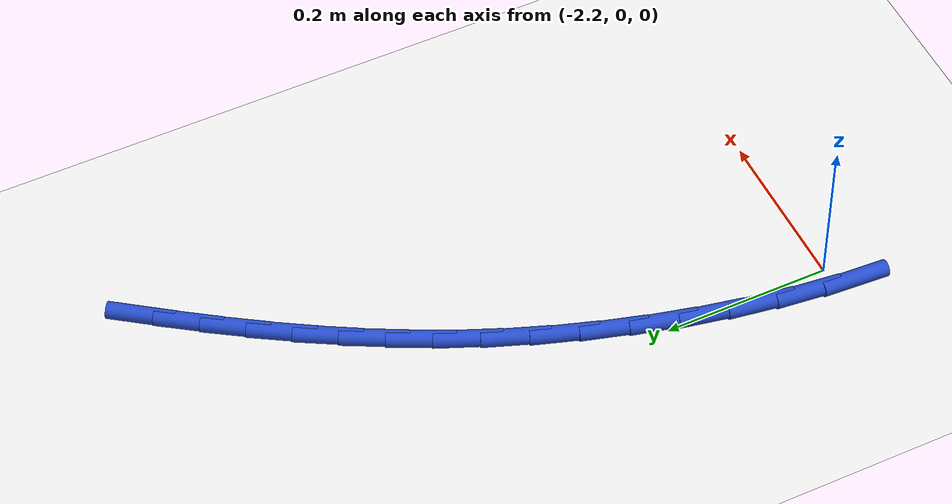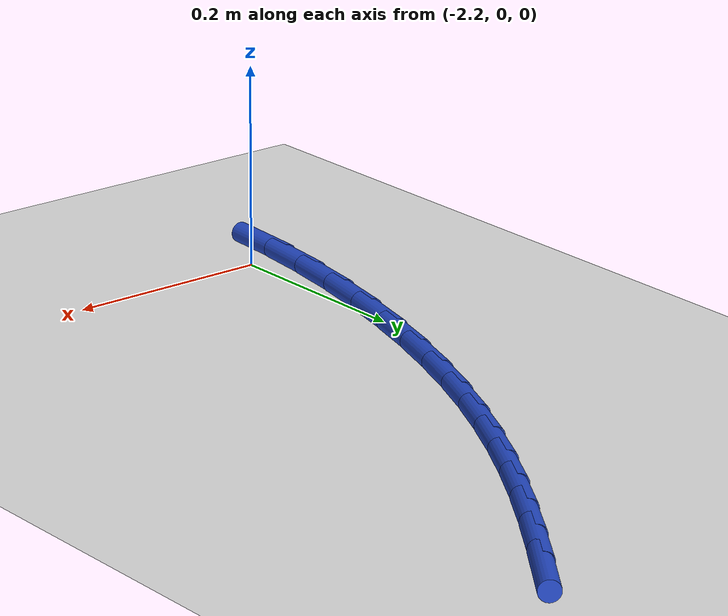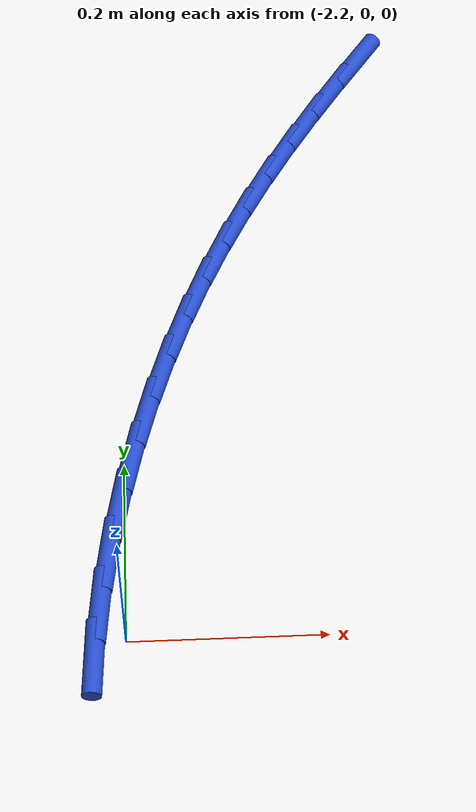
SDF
<sdf version="1.6">
 <world name="default">
  <model name="ground_plane">
   <static>1</static>
   <link name="link">
    <collision name="collision">
     <geometry><plane><normal>0 0 1</normal><size>100 100</size></plane></geometry>
     <surface><friction><ode><mu>100</mu><mu2>50</mu2></ode></friction></surface>
    </collision>
    <visual name="visual">
     <cast_shadows>0</cast_shadows>
     <geometry><plane><normal>0 0 1</normal><size>100 100</size></plane></geometry>
     <material>
      <script><uri>file://media/materials/scripts/gazebo.material</uri><name>Gazebo/WhiteGlow</name></script>
     </material>
    </visual>
   </link>
  </model>
  <model name="line">
   <link name="link_50">
    <pose>-1.9269551712462487 0.7245511019169529 0.01 0 1.57 0.9455385366118471</pose>
    <collision name="collision">
     <geometry><cylinder><radius>0.01</radius><length>0.08</length></cylinder></geometry>
    </collision>
    <visual name="visual">
     <material>
      <script><name>Gazebo/Blue</name><uri>file://media/materials/scripts/gazebo.material</uri></script>
     </material>
     <geometry><cylinder><radius>0.01</radius><length>0.08</length></cylinder></geometry>
    </visual>
   </link>
   <link name="link_51">
    <pose>-1.9588993289671053 0.6802995464505053 0.01 0 1.57 0.9654908058356094</pose>
    <collision name="collision">
     <geometry><cylinder><radius>0.01</radius><length>0.08</length></cylinder></geometry>
    </collision>
    <visual name="visual">
     <material>
      <script><name>Gazebo/Blue</name><uri>file://media/materials/scripts/gazebo.material</uri></script>
     </material>
     <geometry><cylinder><radius>0.01</radius><length>0.08</length></cylinder></geometry>
    </visual>
   </link>
   <link name="link_52">
    <pose>-1.9892897218405206 0.6363798735641859 0.01 0 1.57 0.9898638619060566</pose>
    <collision name="collision">
     <geometry><cylinder><radius>0.01</radius><length>0.08</length></cylinder></geometry>
    </collision>
    <visual name="visual">
     <material>
      <script><name>Gazebo/Blue</name><uri>file://media/materials/scripts/gazebo.material</uri></script>
     </material>
     <geometry><cylinder><radius>0.01</radius><length>0.08</length></cylinder></geometry>
    </visual>
   </link>
   <link name="link_53">
    <pose>-2.0181248855095126 0.5924574417722727 0.01 0 1.57 1.0186046567034703</pose>
    <collision name="collision">
     <geometry><cylinder><radius>0.01</radius><length>0.08</length></cylinder></geometry>
    </collision>
    <visual name="visual">
     <material>
      <script><name>Gazebo/Blue</name><uri>file://media/materials/scripts/gazebo.material</uri></script>
     </material>
     <geometry><cylinder><radius>0.01</radius><length>0.08</length></cylinder></geometry>
    </visual>
   </link>
   <link name="link_54">
    <pose>-2.0454036297812106 0.5481827352357239 0.01 0 1.57 1.0513103813742697</pose>
    <collision name="collision">
     <geometry><cylinder><radius>0.01</radius><length>0.08</length></cylinder></geometry>
    </collision>
    <visual name="visual">
     <material>
      <script><name>Gazebo/Blue</name><uri>file://media/materials/scripts/gazebo.material</uri></script>
     </material>
     <geometry><cylinder><radius>0.01</radius><length>0.08</length></cylinder></geometry>
    </visual>
   </link>
   <link name="link_55">
    <pose>-2.071124764462743 0.5032062381154974 0.01 0 1.57 1.0873878509446575</pose>
    <collision name="collision">
     <geometry><cylinder><radius>0.01</radius><length>0.08</length></cylinder></geometry>
    </collision>
    <visual name="visual">
     <material>
      <script><name>Gazebo/Blue</name><uri>file://media/materials/scripts/gazebo.material</uri></script>
     </material>
     <geometry><cylinder><radius>0.01</radius><length>0.08</length></cylinder></geometry>
    </visual>
   </link>
   <link name="link_56">
    <pose>-2.0952870993612374 0.45717843457255153 0.01 0 1.57 1.1260800808773586</pose>
    <collision name="collision">
     <geometry><cylinder><radius>0.01</radius><length>0.08</length></cylinder></geometry>
    </collision>
    <visual name="visual">
     <material>
      <script><name>Gazebo/Blue</name><uri>file://media/materials/scripts/gazebo.material</uri></script>
     </material>
     <geometry><cylinder><radius>0.01</radius><length>0.08</length></cylinder></geometry>
    </visual>
   </link>
   <link name="link_57">
    <pose>-2.1178894442838225 0.40974980876784406 0.01 0 1.57 1.1665138338706196</pose>
    <collision name="collision">
     <geometry><cylinder><radius>0.01</radius><length>0.08</length></cylinder></geometry>
    </collision>
    <visual name="visual">
     <material>
      <script><name>Gazebo/Blue</name><uri>file://media/materials/scripts/gazebo.material</uri></script>
     </material>
     <geometry><cylinder><radius>0.01</radius><length>0.08</length></cylinder></geometry>
    </visual>
   </link>
   <link name="link_58">
    <pose>-2.1389304846477843 0.36057131143435056 0.01 0 1.57 1.207433790051341</pose>
    <collision name="collision">
     <geometry><cylinder><radius>0.01</radius><length>0.08</length></cylinder></geometry>
    </collision>
    <visual name="visual">
     <material>
      <script><name>Gazebo/Blue</name><uri>file://media/materials/scripts/gazebo.material</uri></script>
     </material>
     <geometry><cylinder><radius>0.01</radius><length>0.08</length></cylinder></geometry>
    </visual>
   </link>
   <link name="link_59">
    <pose>-2.1583628162863033 0.30946677004311685 0.01 0 1.57 1.2478633479591734</pose>
    <collision name="collision">
     <geometry><cylinder><radius>0.01</radius><length>0.08</length></cylinder></geometry>
    </collision>
    <visual name="visual">
     <material>
      <script><name>Gazebo/Blue</name><uri>file://media/materials/scripts/gazebo.material</uri></script>
     </material>
     <geometry><cylinder><radius>0.01</radius><length>0.08</length></cylinder></geometry>
    </visual>
   </link>
   <link name="link_60">
    <pose>-2.17602424161546 0.2566905889923932 0.01 0 1.57 1.288304207902161</pose>
    <collision name="collision">
     <geometry><cylinder><radius>0.01</radius><length>0.08</length></cylinder></geometry>
    </collision>
    <visual name="visual">
     <material>
      <script><name>Gazebo/Blue</name><uri>file://media/materials/scripts/gazebo.material</uri></script>
     </material>
     <geometry><cylinder><radius>0.01</radius><length>0.08</length></cylinder></geometry>
    </visual>
   </link>
   <link name="link_61">
    <pose>-2.191734989933624 0.2025630874272549 0.01 0 1.57 1.3293925816011882</pose>
    <collision name="collision">
     <geometry><cylinder><radius>0.01</radius><length>0.08</length></cylinder></geometry>
    </collision>
    <visual name="visual">
     <material>
      <script><name>Gazebo/Blue</name><uri>file://media/materials/scripts/gazebo.material</uri></script>
     </material>
     <geometry><cylinder><radius>0.01</radius><length>0.08</length></cylinder></geometry>
    </visual>
   </link>
   <link name="link_62">
    <pose>-2.2053152905391653 0.14740458449277666 0.01 0 1.57 1.371744886523296</pose>
    <collision name="collision">
     <geometry><cylinder><radius>0.01</radius><length>0.08</length></cylinder></geometry>
    </collision>
    <visual name="visual">
     <material>
      <script><name>Gazebo/Blue</name><uri>file://media/materials/scripts/gazebo.material</uri></script>
     </material>
     <geometry><cylinder><radius>0.01</radius><length>0.08</length></cylinder></geometry>
    </visual>
   </link>
   <link name="link_63">
    <pose>-2.216585372730452 0.09153539933403437 0.01 0 1.57 1.4159811062256196</pose>
    <collision name="collision">
     <geometry><cylinder><radius>0.01</radius><length>0.08</length></cylinder></geometry>
    </collision>
    <visual name="visual">
     <material>
      <script><name>Gazebo/Blue</name><uri>file://media/materials/scripts/gazebo.material</uri></script>
     </material>
     <geometry><cylinder><radius>0.01</radius><length>0.08</length></cylinder></geometry>
    </visual>
   </link>
   <link name="link_64">
    <pose>-2.2253654658058566 0.035275851096103934 0.01 0 1.57 1.4627441545823587</pose>
    <collision name="collision">
     <geometry><cylinder><radius>0.01</radius><length>0.08</length></cylinder></geometry>
    </collision>
    <visual name="visual">
     <material>
      <script><name>Gazebo/Blue</name><uri>file://media/materials/scripts/gazebo.material</uri></script>
     </material>
     <geometry><cylinder><radius>0.01</radius><length>0.08</length></cylinder></geometry>
    </visual>
   </link>
   <link name="link_65">
    <pose>-2.231475799063746 -0.021053741075939814 0.01 0 1.57 1.5127154613243952</pose>
    <collision name="collision">
     <geometry><cylinder><radius>0.01</radius><length>0.08</length></cylinder></geometry>
    </collision>
    <visual name="visual">
     <material>
      <script><name>Gazebo/Blue</name><uri>file://media/materials/scripts/gazebo.material</uri></script>
     </material>
     <geometry><cylinder><radius>0.01</radius><length>0.08</length></cylinder></geometry>
    </visual>
   </link>
  </model>
 </world>
</sdf>
